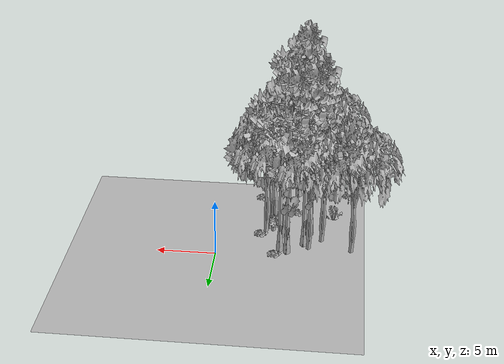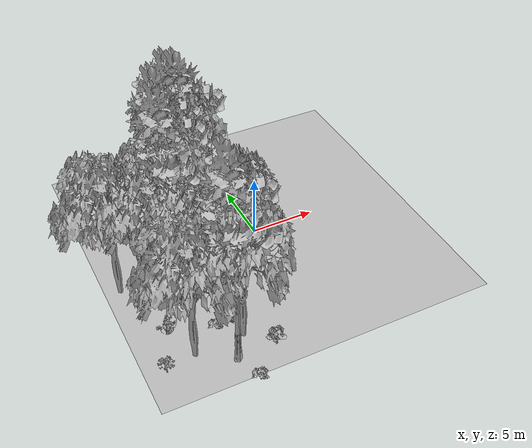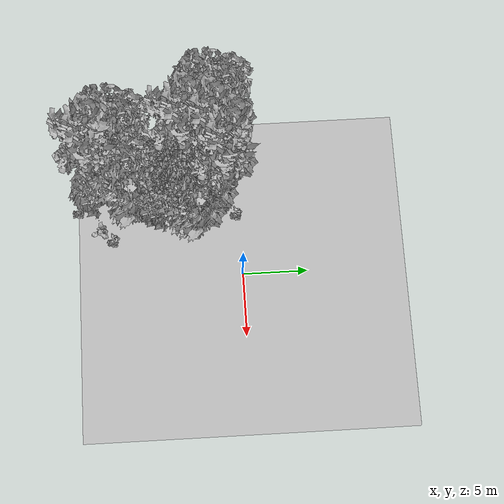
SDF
<sdf version="1.7">
 <world name="default">
  <model name="ground_plane">
   <static>1</static>
   <link name="link">
    <collision name="collision">
     <pose>-50 0 0 0 -0 0</pose>
     <geometry><plane><normal>0 0 1</normal><size>80 80</size></plane></geometry>
     <surface><contact><ode><min_depth>0.01</min_depth><max_vel>0</max_vel></ode></contact></surface>
    </collision>
    <visual name="grass">
     <cast_shadows>0</cast_shadows>
     <geometry>
      <mesh>
       <scale>0.46714285714285714 0.46714285714285714 0.1</scale>
       <uri>file://grass_plane/meshes/grass_plane.dae</uri>
      </mesh>
     </geometry>
    </visual>
   </link>
  </model>
  <model name="Tree 32">
   <static>1</static>
   <pose>-5.376552090269698 -9.059441711780039 0 1.57079 -0 0</pose>
   <link name="link">
    <collision name="collision">
     <geometry><mesh><scale>3.5 5 3.5</scale><uri>model://tree_2/meshes/tree_2.obj</uri></mesh></geometry>
    </collision>
    <visual name="visual">
     <geometry><mesh><scale>3.5 5 3.5</scale><uri>model://tree_2/meshes/tree_2.obj</uri></mesh></geometry>
    </visual>
   </link>
  </model>
  <model name="Tree 64">
   <static>1</static>
   <pose>-8.979732656259447 -3.049619264636121 0 1.57079 -0 0</pose>
   <link name="link">
    <collision name="collision">
     <geometry><mesh><scale>3.5 5 3.5</scale><uri>model://tree_2/meshes/tree_2.obj</uri></mesh></geometry>
    </collision>
    <visual name="visual">
     <geometry><mesh><scale>3.5 5 3.5</scale><uri>model://tree_2/meshes/tree_2.obj</uri></mesh></geometry>
    </visual>
   </link>
  </model>
  <model name="Tree 135">
   <static>1</static>
   <pose>-4.71974892122897 -4.42199815618671 0 1.57079 -0 0</pose>
   <link name="link">
    <collision name="collision">
     <geometry><mesh><scale>3.5 5 3.5</scale><uri>model://tree_2/meshes/tree_2.obj</uri></mesh></geometry>
    </collision>
    <visual name="visual">
     <geometry><mesh><scale>3.5 5 3.5</scale><uri>model://tree_2/meshes/tree_2.obj</uri></mesh></geometry>
    </visual>
   </link>
  </model>
  <model name="Tree 285">
   <static>1</static>
   <pose>-11.546329897173354 -1.558246223260852 0 1.57079 -0 0</pose>
   <link name="link">
    <collision name="collision">
     <geometry><mesh><scale>3.5 5 3.5</scale><uri>model://tree_2/meshes/tree_2.obj</uri></mesh></geometry>
    </collision>
    <visual name="visual">
     <geometry><mesh><scale>3.5 5 3.5</scale><uri>model://tree_2/meshes/tree_2.obj</uri></mesh></geometry>
    </visual>
   </link>
  </model>
  <model name="Tree 286">
   <static>1</static>
   <pose>-5.525689714235952 -3.2367966373052397 0 1.57079 -0 0</pose>
   <link name="link">
    <collision name="collision">
     <geometry><mesh><scale>3.5 5 3.5</scale><uri>model://tree_2/meshes/tree_2.obj</uri></mesh></geometry>
    </collision>
    <visual name="visual">
     <geometry><mesh><scale>3.5 5 3.5</scale><uri>model://tree_2/meshes/tree_2.obj</uri></mesh></geometry>
    </visual>
   </link>
  </model>
  <model name="Tree 328">
   <static>1</static>
   <pose>-5.396713891693487 -1.0701068176942101 0 1.57079 -0 0</pose>
   <link name="link">
    <collision name="collision">
     <geometry><mesh><scale>3.5 5 3.5</scale><uri>model://tree_9/meshes/tree_9.obj</uri></mesh></geometry>
    </collision>
    <visual name="visual">
     <geometry><mesh><scale>3.5 5 3.5</scale><uri>model://tree_9/meshes/tree_9.obj</uri></mesh></geometry>
    </visual>
   </link>
  </model>
  <model name="Tree 394">
   <static>1</static>
   <pose>-4.093883577553946 -4.175681262681536 0 1.57079 -0 0</pose>
   <link name="link">
    <collision name="collision">
     <geometry><mesh><scale>3.5 5 3.5</scale><uri>model://tree_2/meshes/tree_2.obj</uri></mesh></geometry>
    </collision>
    <visual name="visual">
     <geometry><mesh><scale>3.5 5 3.5</scale><uri>model://tree_2/meshes/tree_2.obj</uri></mesh></geometry>
    </visual>
   </link>
  </model>
  <model name="Tree 416">
   <static>1</static>
   <pose>-7.375989260440345 -2.112618627606217 0 1.57079 -0 0</pose>
   <link name="link">
    <collision name="collision">
     <geometry><mesh><scale>3.5 5 3.5</scale><uri>model://tree_9/meshes/tree_9.obj</uri></mesh></geometry>
    </collision>
    <visual name="visual">
     <geometry><mesh><scale>3.5 5 3.5</scale><uri>model://tree_9/meshes/tree_9.obj</uri></mesh></geometry>
    </visual>
   </link>
  </model>
  <model name="Tree 427">
   <static>1</static>
   <pose>-7.856208017028088 -3.9956179080689793 0 1.57079 -0 0</pose>
   <link name="link">
    <collision name="collision">
     <geometry><mesh><scale>3.5 5 3.5</scale><uri>model://tree_9/meshes/tree_9.obj</uri></mesh></geometry>
    </collision>
    <visual name="visual">
     <geometry><mesh><scale>3.5 5 3.5</scale><uri>model://tree_9/meshes/tree_9.obj</uri></mesh></geometry>
    </visual>
   </link>
  </model>
  <model name="Tree 434">
   <static>1</static>
   <pose>-4.3360438696214345 -4.782734276876141 0 1.57079 -0 0</pose>
   <link name="link">
    <collision name="collision">
     <geometry><mesh><scale>3.5 5 3.5</scale><uri>model://tree_2/meshes/tree_2.obj</uri></mesh></geometry>
    </collision>
    <visual name="visual">
     <geometry><mesh><scale>3.5 5 3.5</scale><uri>model://tree_2/meshes/tree_2.obj</uri></mesh></geometry>
    </visual>
   </link>
  </model>
  <model name="Tree 455">
   <static>1</static>
   <pose>-8.99158541416832 -9.232034871463235 0 1.57079 -0 0</pose>
   <link name="link">
    <collision name="collision">
     <geometry><mesh><scale>3.5 5 3.5</scale><uri>model://tree_2/meshes/tree_2.obj</uri></mesh></geometry>
    </collision>
    <visual name="visual">
     <geometry><mesh><scale>3.5 5 3.5</scale><uri>model://tree_2/meshes/tree_2.obj</uri></mesh></geometry>
    </visual>
   </link>
  </model>
  <model name="Tree 522">
   <static>1</static>
   <pose>-6.016367918728214 -0.7646663501857276 0 1.57079 -0 0</pose>
   <link name="link">
    <collision name="collision">
     <geometry><mesh><scale>3.5 5 3.5</scale><uri>model://tree_9/meshes/tree_9.obj</uri></mesh></geometry>
    </collision>
    <visual name="visual">
     <geometry><mesh><scale>3.5 5 3.5</scale><uri>model://tree_9/meshes/tree_9.obj</uri></mesh></geometry>
    </visual>
   </link>
  </model>
  <model name="Tree 605">
   <static>1</static>
   <pose>-6.503550843051819 -10.814379361867388 0 1.57079 -0 0</pose>
   <link name="link">
    <collision name="collision">
     <geometry><mesh><scale>3.5 5 3.5</scale><uri>model://tree_9/meshes/tree_9.obj</uri></mesh></geometry>
    </collision>
    <visual name="visual">
     <geometry><mesh><scale>3.5 5 3.5</scale><uri>model://tree_9/meshes/tree_9.obj</uri></mesh></geometry>
    </visual>
   </link>
  </model>
  <model name="Tree 626">
   <static>1</static>
   <pose>-7.9197292068881175 -1.6763865524778794 0 1.57079 -0 0</pose>
   <link name="link">
    <collision name="collision">
     <geometry><mesh><scale>3.5 5 3.5</scale><uri>model://tree_2/meshes/tree_2.obj</uri></mesh></geometry>
    </collision>
    <visual name="visual">
     <geometry><mesh><scale>3.5 5 3.5</scale><uri>model://tree_2/meshes/tree_2.obj</uri></mesh></geometry>
    </visual>
   </link>
  </model>
  <model name="Bush 2">
   <static>1</static>
   <pose>-3.546552095829867 -3.498956146702561 0 1.57079 -0 0</pose>
   <link name="link">
    <collision name="collision">
     <geometry><mesh><scale>2 2 2</scale><uri>model://bush_2/meshes/bush_2.obj</uri></mesh></geometry>
     <surface><contact><collide_without_contact>false</collide_without_contact></contact></surface>
    </collision>
    <visual name="visual">
     <geometry><mesh><scale>2 2 2</scale><uri>model://bush_2/meshes/bush_2.obj</uri></mesh></geometry>
    </visual>
   </link>
  </model>
  <model name="Bush 50">
   <static>1</static>
   <pose>-5.11854631922909 -4.743002022864658 0 1.57079 -0 0</pose>
   <link name="link">
    <collision name="collision">
     <geometry><mesh><scale>2 2 2</scale><uri>model://bush_1/meshes/bush_1.obj</uri></mesh></geometry>
     <surface><contact><collide_without_contact>false</collide_without_contact></contact></surface>
    </collision>
    <visual name="visual">
     <geometry><mesh><scale>2 2 2</scale><uri>model://bush_1/meshes/bush_1.obj</uri></mesh></geometry>
    </visual>
   </link>
  </model>
  <model name="Bush 153">
   <static>1</static>
   <pose>-11.109816144511495 -9.75480083908711 0 1.57079 -0 0</pose>
   <link name="link">
    <collision name="collision">
     <geometry><mesh><scale>2 2 2</scale><uri>model://bush_5/meshes/bush_5.obj</uri></mesh></geometry>
     <surface><contact><collide_without_contact>false</collide_without_contact></contact></surface>
    </collision>
    <visual name="visual">
     <geometry><mesh><scale>2 2 2</scale><uri>model://bush_5/meshes/bush_5.obj</uri></mesh></geometry>
    </visual>
   </link>
  </model>
  <model name="Bush 234">
   <static>1</static>
   <pose>-6.636096905334291 -7.47277521356267 0 1.57079 -0 0</pose>
   <link name="link">
    <collision name="collision">
     <geometry><mesh><scale>2 2 2</scale><uri>model://bush_2/meshes/bush_2.obj</uri></mesh></geometry>
     <surface><contact><collide_without_contact>false</collide_without_contact></contact></surface>
    </collision>
    <visual name="visual">
     <geometry><mesh><scale>2 2 2</scale><uri>model://bush_2/meshes/bush_2.obj</uri></mesh></geometry>
    </visual>
   </link>
  </model>
  <model name="Bush 248">
   <static>1</static>
   <pose>-3.623010834745699 -10.759496876099526 0 1.57079 -0 0</pose>
   <link name="link">
    <collision name="collision">
     <geometry><mesh><scale>2 2 2</scale><uri>model://bush_0/meshes/bush_0.obj</uri></mesh></geometry>
     <surface><contact><collide_without_contact>false</collide_without_contact></contact></surface>
    </collision>
    <visual name="visual">
     <geometry><mesh><scale>2 2 2</scale><uri>model://bush_0/meshes/bush_0.obj</uri></mesh></geometry>
    </visual>
   </link>
  </model>
  <model name="Bush 302">
   <static>1</static>
   <pose>-5.779820478814706 -12.588155234020853 0 1.57079 -0 0</pose>
   <link name="link">
    <collision name="collision">
     <geometry><mesh><scale>2 2 2</scale><uri>model://bush_2/meshes/bush_2.obj</uri></mesh></geometry>
     <surface><contact><collide_without_contact>false</collide_without_contact></contact></surface>
    </collision>
    <visual name="visual">
     <geometry><mesh><scale>2 2 2</scale><uri>model://bush_2/meshes/bush_2.obj</uri></mesh></geometry>
    </visual>
   </link>
  </model>
  <model name="Bush 388">
   <static>1</static>
   <pose>-4.943917081568564 -0.27332304210840164 0 1.57079 -0 0</pose>
   <link name="link">
    <collision name="collision">
     <geometry><mesh><scale>2 2 2</scale><uri>model://bush_2/meshes/bush_2.obj</uri></mesh></geometry>
     <surface><contact><collide_without_contact>false</collide_without_contact></contact></surface>
    </collision>
    <visual name="visual">
     <geometry><mesh><scale>2 2 2</scale><uri>model://bush_2/meshes/bush_2.obj</uri></mesh></geometry>
    </visual>
   </link>
  </model>
  <model name="Bush 416">
   <static>1</static>
   <pose>-3.2219139577557456 -9.946447695093052 0 1.57079 -0 0</pose>
   <link name="link">
    <collision name="collision">
     <geometry><mesh><scale>2 2 2</scale><uri>model://bush_2/meshes/bush_2.obj</uri></mesh></geometry>
     <surface><contact><collide_without_contact>false</collide_without_contact></contact></surface>
    </collision>
    <visual name="visual">
     <geometry><mesh><scale>2 2 2</scale><uri>model://bush_2/meshes/bush_2.obj</uri></mesh></geometry>
    </visual>
   </link>
  </model>
  <model name="Bush 477">
   <static>1</static>
   <pose>-9.845198565449063 -6.7432542544526015 0 1.57079 -0 0</pose>
   <link name="link">
    <collision name="collision">
     <geometry><mesh><scale>2 2 2</scale><uri>model://bush_4/meshes/bush_4.obj</uri></mesh></geometry>
     <surface><contact><collide_without_contact>false</collide_without_contact></contact></surface>
    </collision>
    <visual name="visual">
     <geometry><mesh><scale>2 2 2</scale><uri>model://bush_4/meshes/bush_4.obj</uri></mesh></geometry>
    </visual>
   </link>
  </model>
 </world>
</sdf>
